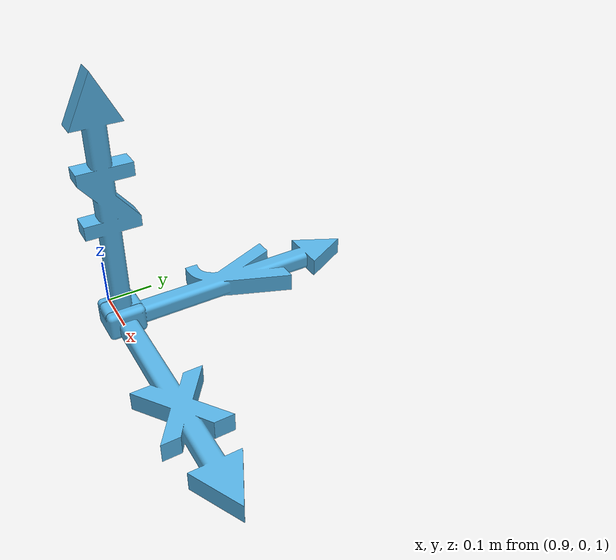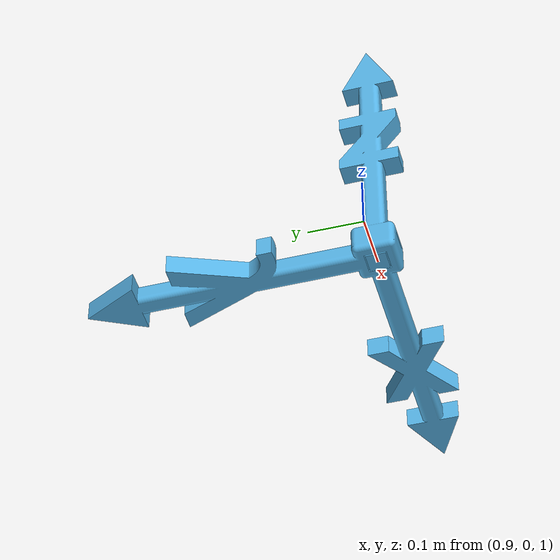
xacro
<?xml version="1.0"?>
<robot name="goal_CS" xmlns:xacro="http://ros.org/wiki/xacro">
  <link name="world" />

  <joint name="goal_joint" type="fixed">
    <origin xyz="1 0 1" rpy="0 0 0" />
    <parent link="world"/>
    <child link="goal_link" />
  </joint>

  <!-- chassis link -->
  <link name="goal_link">
    <visual>
      <origin xyz="0 0 0" rpy="0 0 0" />
      <geometry>
        <mesh filename="$(find mobile_base_control)/urdf/right_hand_system_assembled.stl" scale="0.01 0.01 0.01"/>
      </geometry>
    </visual>
    <collision>
      <geometry>
      </geometry>
    </collision>

    <inertial>
      <!-- Fill in w/ CAD values -->
      <origin xyz="-0.01103 0 0.002" rpy="0 0 0"/>
      <mass value="2.844"/>
      <inertia
        ixx="0.018819942" ixy="0" ixz="-0.000101519"
        iyy="0.057333716" iyz="0"
        izz="0.074201740"/>
    </inertial>

  </link>

</robot>
